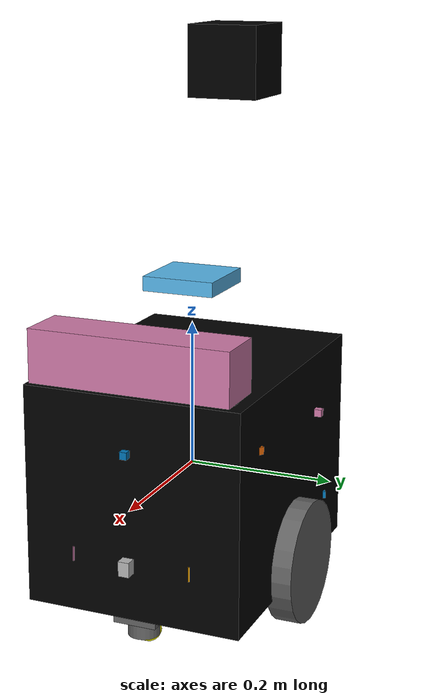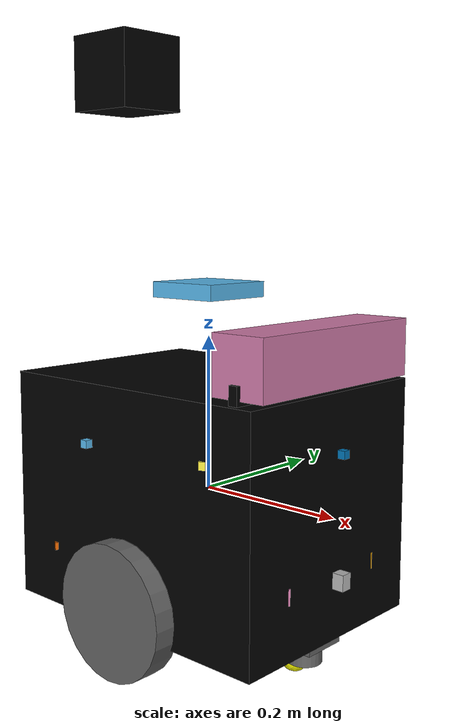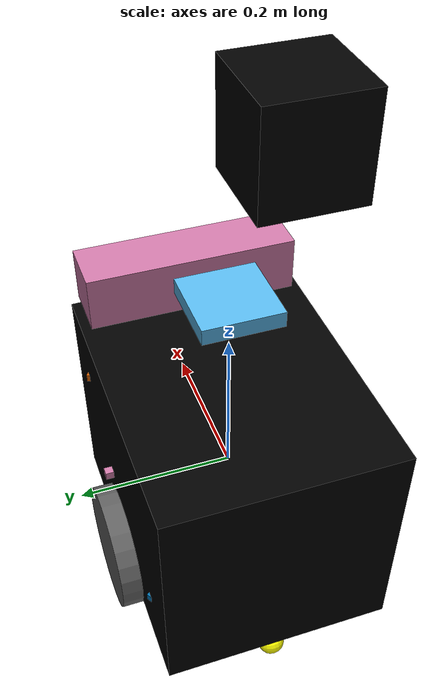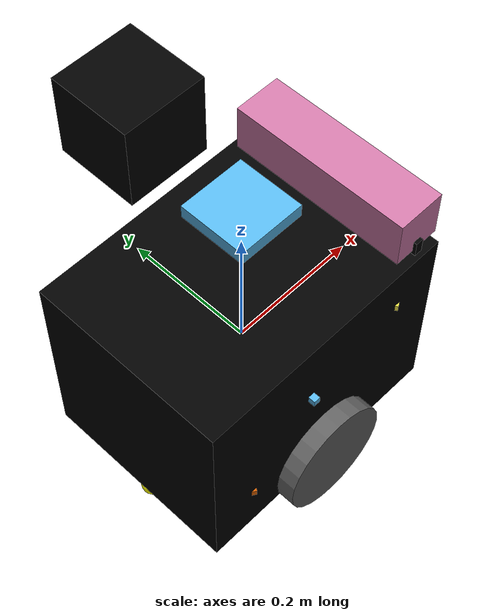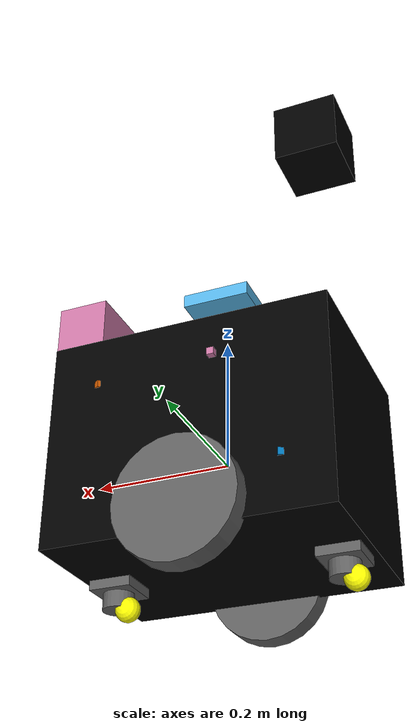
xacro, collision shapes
<?xml version="1.0"?>
<!--
  The complete evarobot library of xacros for easy reference
 -->
<robot name="evarobot" xmlns:xacro="http://ros.org/wiki/xacro">

  <xacro:property name="pi" value="3.1415926535897931" />

  <!-- Includes -->
  <xacro:include filename="$(find evarobot_description)/urdf/materials.urdf.xacro"/>
  <xacro:include filename="$(find evarobot_description)/urdf/evarobot_base.urdf.xacro"/>
  <xacro:include filename="$(find evarobot_description)/urdf/evarobot_caster.urdf.xacro"/>
  <xacro:include filename="$(find evarobot_description)/urdf/evarobot_wheel.urdf.xacro"/>
  <xacro:include filename="$(find evarobot_description)/urdf/evarobot_ahrs.urdf.xacro"/>
  <xacro:include filename="$(find evarobot_description)/urdf/evarobot_sonar.urdf.xacro"/>
  <xacro:include filename="$(find evarobot_description)/urdf/evarobot_infrared.urdf.xacro"/>
  <xacro:include filename="$(find evarobot_description)/urdf/evarobot_kinect.urdf.xacro"/>
  <xacro:include filename="$(find evarobot_description)/urdf/evarobot_lidar.urdf.xacro"/>
  <xacro:include filename="$(find evarobot_description)/urdf/evarobot_bumper.urdf.xacro"/>
  <xacro:include filename="$(find evarobot_description)/urdf/evarobot_pozyx.urdf.xacro"/>
  <xacro:include filename="$(find evarobot_description)/urdf/plates.urdf.xacro"/>

 <!-- Differential Drive Plugin -->
 <gazebo>
    <plugin name="differential_drive_controller" filename="libgazebo_ros_diff_drive.so">
	  <alwaysOn>true</alwaysOn>
	  <updateRate>10.0</updateRate>
		<robotBaseFrame>base_link</robotBaseFrame>
		<publishWheelTF>true</publishWheelTF>
		<publishWheelJointState>true</publishWheelJointState>
		<wheelAcceleration>1</wheelAcceleration>
	  <leftJoint>right_wheel_joint</leftJoint>
	  <rightJoint>left_wheel_joint</rightJoint>
	  <wheelSeparation>0.33</wheelSeparation>
	  <wheelDiameter>0.17</wheelDiameter>
	  <wheelTorque>20</wheelTorque>
	  <commandTopic>cmd_vel</commandTopic>
	  <odometryTopic>odom</odometryTopic>
	  <odometryFrame>odom_combined</odometryFrame>
    </plugin>
  </gazebo>

	<gazebo>
		<plugin name="MultipleContact" filename="libevarobot_ros_bumper.so"/>
  </gazebo>

  <!-- Base -->
  <xacro:evarobot_base prefix="base"
					   mesh_x="0.065"
					   mesh_y="-0.11"
					   mesh_z="-0.15"
					   mesh_roll="0.0"
					   mesh_pitch="0.0"
					   mesh_yaw="0"
					   box_x="0.40"
					   box_y="0.30"
					   box_z="0.30" />

  <!-- Left Wheel -->
  <xacro:evarobot_wheel prefix="left_wheel"
						joint_x="0.0"
						joint_y="0.16"
						joint_z="${-0.15 + (85-54)/1000}"
						joint_roll="0.0"
						joint_pitch="0.0"
						joint_yaw="0.0"
						cylinder_length="0.035"
						cylinder_radius="0.085"
						parent_link="base_link" />

  <!-- Right Wheel 	 -->
  <xacro:evarobot_wheel prefix="right_wheel"
						joint_x="0.0"
						joint_y="-0.16"
						joint_z="${-0.15 + (85-54)/1000}"
						joint_roll="0.0"
						joint_pitch="0.0"
						joint_yaw="0.0"
						cylinder_length="0.035"
						cylinder_radius="0.085"
						parent_link="base_link" />

  <!-- Caster -->

  <xacro:evarobot_caster prefix="front_caster"
						 radius="0.025"
						 x="0.1604"
						 y="0.0"
						 z="${-0.15 -13.5/2000}"
						 roll="0.0"
						 pitch="0.0"
						 yaw="0.0"
						 axis_x="0.577350269"
						 axis_y="0.577350269"
						 axis_z="0.577350269"
						 parent_link="base_link" />

    <xacro:evarobot_caster prefix="rear_caster"
						 radius="0.025"
						 x="-0.1604"
						 y="0.0"
						 z="${-0.15 -13.5/2000}"
						 roll="0.0"
						 pitch="0.0"
						 yaw="0.0"
						 axis_x="0.577350269"
						 axis_y="0.577350269"
						 axis_z="0.577350269"
						 parent_link="base_link" />

  <!-- Lidar -->
  <xacro:evarobot_lidar prefix="lidar"
                        joint_x="-0.15"
                        joint_y="0.0"
                        joint_z="${0.4415 + 100/1000}"
                        joint_roll="0.0"
                        joint_pitch="0.0"
                        joint_yaw="3.14"
												update_rate="40"
												samples="720"
												resolution="1"
												min_angle="-3.1416"
												max_angle="3.1416"
												min_range="0.5"
												max_range="5.0"
												range_resolution="0.1"
												parent_link="base_link"
												robot_namespace="sensor"
												topic_name="lidar"
												frame_name="lidar_link" />

  <!-- Kinect -->
   <xacro:evarobot_kinect prefix="kinect"
						 joint_x="0.17"
						 joint_y="0.0"
						 joint_z="${0.21 - 18.7/1000}"
						 joint_roll="0.0"
						 joint_pitch="0.0"
						 joint_yaw="0.0"
						 parent_link="base_link"
						 base_line="0.2"
						 update_rate="1.0"
						 camera_name="camera" />

  <!-- AHRS/IMU -->
  <xacro:evarobot_ahrs prefix="imu"
					   joint_x="0.0"
					   joint_y="0.0"
					   joint_z="0.19"
					   joint_roll="${pi}"
					   joint_pitch="0.0"
					   joint_yaw="0.0"
					   parent_link="base_link"
					   topic_name="imu"
					   frame_name="imu_link"
					   update_rate="10.0"
					   service_name="imu_service"
					   robot_namespace="evarobot" />

 <!-- Sonar -->

	<xacro:evarobot_sonar prefix="sonar0"
				parent_link="base_link"
				scan_samples="320"
				scan_resolution="1"
				min_angle="-0.479965544"
				max_angle="0.479965544"
				range_resolution="0.01"
				min_range="0.02"
				max_range="5.0"
				topic_name="sonar0"
				frame_name="sonar0_link"
				update_rate="4" >
				<origin xyz="0.130 -0.147 ${0.03+50/1000}" rpy="0 0 ${-pi/3}" />

	</xacro:evarobot_sonar>

  <xacro:evarobot_sonar prefix="sonar1"
						parent_link="base_link"
						scan_samples="320"
						scan_resolution="1"
						min_angle="-0.479965544"
						max_angle="0.479965544"
						range_resolution="0.01"
						min_range="0.02"
						max_range="5.0"
						topic_name="sonar1"
						frame_name="sonar1_link"
						update_rate="4">
								<origin xyz="0.213 0.0 ${0.03+50/1000}" rpy="0 0 0" />
	</xacro:evarobot_sonar>

	<xacro:evarobot_sonar prefix="sonar2"
				parent_link="base_link"
				scan_samples="320"
				scan_resolution="1"
				min_angle="-0.479965544"
				max_angle="0.479965544"
				range_resolution="0.01"
				min_range="0.02"
				max_range="5.0"
				topic_name="sonar2"
				frame_name="sonar2_link"
				update_rate="4" >
				<origin xyz="0.130 0.147 ${0.03+50/1000}" rpy="0 0 ${pi/3}" />
	</xacro:evarobot_sonar>

	<xacro:evarobot_sonar prefix="sonar3"
					parent_link="base_link"
					scan_samples="320"
					scan_resolution="1"
					min_angle="-0.479965544"
					max_angle="0.479965544"
					range_resolution="0.01"
					min_range="0.02"
					max_range="5.0"
					topic_name="sonar3"
					frame_name="sonar3_link"
					update_rate="4">
						<origin xyz="-0.045 0.168 ${0.03+50/1000}" rpy="0 0 ${pi/2}" />

	</xacro:evarobot_sonar>

	<xacro:evarobot_sonar prefix="sonar4"
					parent_link="base_link"
					scan_samples="320"
					scan_resolution="1"
					min_angle="-0.479965544"
					max_angle="0.479965544"
					range_resolution="0.01"
					min_range="0.02"
					max_range="5.0"
					topic_name="sonar4"
					frame_name="sonar4_link"
					update_rate="4" >
					<origin xyz="-0.191 0.084 ${0.03+50/1000}" rpy="0 0 ${5*pi/6}" />

	</xacro:evarobot_sonar>

	<xacro:evarobot_sonar prefix="sonar5"
					parent_link="base_link"
					scan_samples="320"
					scan_resolution="1"
					min_angle="-0.479965544"
					max_angle="0.479965544"
					range_resolution="0.01"
					min_range="0.02"
					max_range="5.0"
					topic_name="sonar5"
					frame_name="sonar5_link"
					update_rate="4" >
					<origin xyz="-0.191 -0.084 ${0.03+50/1000}" rpy="0 0 ${-5*pi/6}" />
	</xacro:evarobot_sonar>

  <xacro:evarobot_sonar prefix="sonar6"
						parent_link="base_link"
						scan_samples="320"
						scan_resolution="1"
						min_angle="-0.479965544"
						max_angle="0.479965544"
						range_resolution="0.01"
						min_range="0.02"
						max_range="5.0"
						topic_name="sonar6"
						frame_name="sonar6_link"
						update_rate="4">
						  <origin xyz="-0.045 -0.168 ${0.03+50/1000}" rpy="0 0 ${-pi/2}" />
  </xacro:evarobot_sonar>

  <!-- Infrared -->

  <xacro:evarobot_infrared prefix="ir0"
						   parent_link="base_link"
						   scan_samples="320"
						   scan_resolution="1"
						   min_angle="-0.001"
						   max_angle="0.001"
						   range_resolution="0.01"
						   min_range="0.10"
						   max_range="0.80"
						   topic_name="ir0"
						   frame_name="ir0_link"
						   update_rate="4" >
						   	     <origin xyz="0.191 -0.084 ${-0.122+50/1000}" rpy="0 0 ${-pi/6}" />

	</xacro:evarobot_infrared>

  <xacro:evarobot_infrared prefix="ir1"
						   parent_link="base_link"
						   scan_samples="320"
						   scan_resolution="1"
						   min_angle="-0.001"
						   max_angle="0.001"
						   range_resolution="0.01"
						   min_range="0.10"
						   max_range="0.80"
						   topic_name="ir1"
						   frame_name="ir1_link"
						   update_rate="4">
						   		<origin xyz="0.191 0.084 ${-0.122+50/1000}" rpy="0 0 ${pi/6}" />

	</xacro:evarobot_infrared>

  <xacro:evarobot_infrared prefix="ir2"
						   parent_link="base_link"
						   scan_samples="320"
						   scan_resolution="1"
						   min_angle="-0.001"
						   max_angle="0.001"
						   range_resolution="0.01"
						   min_range="0.10"
						   max_range="0.80"
						   topic_name="ir2"
						   frame_name="ir2_link"
						   update_rate="4">
						   		<origin xyz="-0.130 0.147 ${-0.122+50/1000}" rpy="0 0 ${2*pi/3}" />

	</xacro:evarobot_infrared>

  <xacro:evarobot_infrared prefix="ir3"
						   parent_link="base_link"
						   scan_samples="320"
						   scan_resolution="1"
						   min_angle="-0.001"
						   max_angle="0.001"
						   range_resolution="0.01"
						   min_range="0.10"
						   max_range="0.80"
						   topic_name="ir3"
						   frame_name="ir3_link"
						   update_rate="4">
						   	    <origin xyz="-0.130 -0.147 ${-0.122+50/1000}" rpy="0 0 ${-2*pi/3}" />

	</xacro:evarobot_infrared>

 <!-- Bumper -->

  <xacro:evarobot_bumper prefix="bumper0"
						 box_x="0.015"
						 box_y="0.015"
						 box_z="0.020"
						 update_rate="10.0"
						 parent_link="base_link"
						 topic_name="bumper0"
						 frame_name="bumper0_link" >
  <origin xyz="0.191 -0.084 ${-0.122+50/1000}" rpy="0 0 ${-pi/6}" />
						 </xacro:evarobot_bumper>

  <xacro:evarobot_bumper prefix="bumper1"
						 box_x="0.015"
						 box_y="0.015"
						 box_z="0.020"
						 update_rate="10.0"
						 parent_link="base_link"
						 topic_name="bumper1"
						 frame_name="bumper1_link" >
						   <origin xyz="0.213 0.0 ${-0.122+50/1000}" rpy="0 0 0" />
						</xacro:evarobot_bumper>

  <xacro:evarobot_bumper prefix="bumper2"
						 box_x="0.015"
						 box_y="0.015"
						 box_z="0.020"
						 update_rate="10.0"
						 parent_link="base_link"
						 topic_name="bumper2"
						 frame_name="bumper2_link" >
  <origin xyz="0.191 0.084 ${-0.122+50/1000}" rpy="0 0 ${pi/6}" />
						 </xacro:evarobot_bumper>

  <!-- Pozyx -->
  <xacro:evarobot_pozyx prefix="pozyx"
						 joint_x="0.0"
						 joint_y="0.0"
						 joint_z="0.26"
						 parent_link="base_link"
						 topic_name="pozyx"
						 joint_roll="0.0"
						 joint_pitch="0.0"
						 joint_yaw="0.0" >
						 </xacro:evarobot_pozyx>

</robot>

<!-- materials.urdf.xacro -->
<robot xmlns:xacro="http://www.ros.org/wiki/xacro">
	<!-- Materials -->
  <material name="Black">
    <color rgba="0 0 0 1.0"/>
  </material>
  <material name="Grey">
    <color rgba="${96/255} ${96/255} ${96/255} 1.0"/>
  </material>
  <material name="Orange">
    <color rgba="${255/255} ${108/255} ${10/255} 1.0"/>
  </material>
  <material name="Yellow">
    <color rgba="${255/255} ${255/255} ${0/255} 1.0"/>
  </material>

</robot>

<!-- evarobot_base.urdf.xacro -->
<robot xmlns:xacro="http://www.ros.org/wiki/xacro" name="eva_base">

	<xacro:macro name="evarobot_base" params="prefix mesh_x mesh_y mesh_z mesh_roll mesh_pitch mesh_yaw box_x box_y box_z">
		<link name="${prefix}_link">

			<collision>
				<origin xyz="0 0 0" rpy="0 0 0"/>
				<geometry>
					<box size="${box_x} ${box_y} ${box_z}"/>
				</geometry>
			</collision>

			<visual>
				<origin xyz="${mesh_x} ${mesh_y} ${mesh_z}" rpy="${mesh_roll} ${mesh_pitch} ${mesh_yaw}" />
				<geometry>
					<mesh filename="package://evarobot_description/meshes/base.stl" scale="1 1 1"/>

				</geometry>
				<material name="Black" />
			</visual>

			<inertial>
				<origin xyz="0 0 0" rpy="0 0 0"/>
				<mass value="10.0"/>
				<inertia
					ixx="1.0" ixy="0" ixz="0"
					iyy="1.0" iyz="0"
					izz="1.0"/>
			</inertial>
		</link>

		<gazebo reference="${prefix}_link">
      <material>Gazebo/Black</material>
		</gazebo>

	</xacro:macro>
</robot>

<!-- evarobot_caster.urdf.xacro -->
<robot xmlns:xacro="http://www.ros.org/wiki/xacro">
	<xacro:macro name="evarobot_caster" params="prefix radius x y z roll pitch yaw axis_x axis_y axis_z parent_link">

    <link name="${prefix}_base_link">
			<collision>
				<origin rpy="0 0 0" xyz="0 0 0"/>
				<geometry>
					<box size="${60/1000} ${60/1000} ${13.5/1000}"/>
				</geometry>
			</collision>

			<visual>
				<origin rpy="${pi} 0 0" xyz="${-5/1000} ${-21.5/2000} ${13.5/2000}"/>
				<geometry>
					<mesh filename="package://evarobot_description/meshes/caster_base.stl" scale="1 1 1"/>
				</geometry>
				<material name="Grey"/>
			</visual>

			<inertial>
				<mass value="0.01" />
				<origin xyz="0 0 0" />
				<inertia ixx="1e-6" ixy="0.0" ixz="0.0"
								 iyy="1e-6" iyz="0.0"
								 izz="1e-6" />
			</inertial>

		</link>

		<gazebo reference="${prefix}_base_link">
			<material>Gazebo/Grey</material>
	    <mu1>0.0</mu1>
	    <mu2>0.0</mu2>
	    <kp>1000000.0</kp>
	    <kd>100.0</kd>
	    <minDepth>0.001</minDepth>
	    <maxVel>1.0</maxVel>
		</gazebo>

		<joint name="${prefix}_base_joint" type="fixed">
			<parent link="${parent_link}"/>
			<child link="${prefix}_base_link"/>
			<origin rpy="${roll} ${pitch} ${yaw}" xyz="${x} ${y} ${z}"/>
			<axis xyz="0 0 0"/>
		</joint>

    <link name="${prefix}_rotate_link">
			<collision>
				<origin rpy="0 0 0" xyz="0 0 0"/>
				<geometry>
					<cylinder length="${23/1000}" radius="${21.5/1000}"/>
				</geometry>
			</collision>

			<visual>
				<origin rpy="${pi} 0 ${pi/2}" xyz="0 0 ${10/1000}"/>
				<geometry>
					<mesh filename="package://evarobot_description/meshes/caster_rot.stl" scale="1 1 1"/>
				</geometry>
				<material name="Grey"/>
			</visual>

			<inertial>
				<mass value="0.01" />
				<origin xyz="0 0 0" />
				<inertia ixx="1e-6" ixy="0.0" ixz="0.0"
								 iyy="1e-6" iyz="0.0"
								 izz="1e-6" />
			</inertial>

		</link>

		<gazebo reference="${prefix}_rotate_link">
			<material>Gazebo/Grey</material>
	    <mu1>0.0</mu1>
	    <mu2>0.0</mu2>
	    <kp>1000000.0</kp>
	    <kd>100.0</kd>
	    <minDepth>0.001</minDepth>
	    <maxVel>1.0</maxVel>
		</gazebo>

		<joint name="${prefix}_base_rotate_joint" type="continuous">
			<parent link="${prefix}_base_link"/>
			<child link="${prefix}_rotate_link"/>
			<origin rpy="0 0 0" xyz="0.0 0.0 ${-37/2000}"/>
			<axis xyz="0 0 1"/>
		</joint>

    <link name="${prefix}_wheel_link">
			<collision>
				<origin rpy="${pi/2} 0 0" xyz="0 0 0"/>
				<geometry>
					<sphere radius="${35/2000}"/>
				</geometry>
			</collision>

			<visual>
				<origin rpy="${pi/2} 0 0" xyz="0 0 0"/>
				<geometry>
					<sphere radius="${35/2000}"/>
				</geometry>
				<material name="Yellow"/>
			</visual>

			<inertial>
				<mass value="0.01" />
				<origin xyz="0 0 0" />
				<inertia ixx="1e-6" ixy="0.0" ixz="0.0"
								 iyy="1e-6" iyz="0.0"
								 izz="1e-6" />
			</inertial>

		</link>

		<gazebo reference="${prefix}_wheel_link">
			<material>Gazebo/Yellow</material>
			<mu1>0.0</mu1>
	    <mu2>0.0</mu2>
	    <kp>1000000.0</kp>
	    <kd>100.0</kd>
	    <minDepth>0.001</minDepth>
	    <maxVel>1.0</maxVel>
		</gazebo>

		<joint name="${prefix}_rotate_wheel_joint" type="continuous">
			<parent link="${prefix}_rotate_link"/>
			<child link="${prefix}_wheel_link"/>
			<origin rpy="0 0 0" xyz="${-14.632/1000} 0.0 ${-23/2000}"/>
			<axis xyz="0.577350269 0.577350269 0.577350269"/>
		</joint>

	</xacro:macro>
</robot>

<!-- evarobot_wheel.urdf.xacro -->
<robot name="evarobot" xmlns:xacro="http://www.ros.org/wiki/xacro">
	<xacro:macro name="evarobot_wheel" params="prefix joint_x joint_y joint_z joint_roll joint_pitch joint_yaw cylinder_length cylinder_radius parent_link">

		<link name="${prefix}_link">
			<collision>
				<origin rpy="1.57075 0 0" xyz="0 0 0"/>
				<geometry>
					<cylinder length="${cylinder_length}" radius="${cylinder_radius}"/>
				</geometry>
			</collision>

			<visual>
				<origin rpy="0 0 ${pi/2}" xyz="0 0 0"/>
				<geometry>
					 <mesh filename="package://evarobot_description/meshes/rim.stl" scale="1 1 1"/>
				</geometry>
				<material name="Grey"/>
			</visual>

			<inertial>
				<origin rpy="1.57075 0 0" xyz="0 0 0"/>
				<mass value="0.85"/>
				<inertia
					ixx="0.001" ixy="0" ixz="0"
					iyy="0.001" iyz="0"
					izz="0.001"/>
			</inertial>

		</link>

		<gazebo reference="${prefix}_link">
			<material>Gazebo/Grey</material>
	    <mu1>1.0</mu1>
	    <mu2>1.0</mu2>
	    <kp>1000000.0</kp>
	    <kd>100.0</kd>
	    <minDepth>0.001</minDepth>
	    <maxVel>1.0</maxVel>
		</gazebo>

		<joint name="${prefix}_joint" type="continuous">
			<axis xyz="0 1 0"/>
			<parent link="${parent_link}"/>
			<child link="${prefix}_link"/>
			<origin rpy="${joint_roll} ${joint_pitch} ${joint_yaw}" xyz="${joint_x} ${joint_y} ${joint_z}"/>
		</joint>

		<link name="${prefix}tire_link">
			<collision>
				<origin rpy="1.57075 0 0" xyz="0 0 0"/>
				<geometry>
					<cylinder length="0.001" radius="0.001"/>
				</geometry>
			</collision>

			<visual>
				<origin rpy="0 0 ${pi/2}" xyz="0 0 0"/>
				<geometry>
					<mesh filename="package://evarobot_description/meshes/tire.stl" scale="1 1 1"/>
				</geometry>
				<material name="Black"/>
			</visual>

			<inertial>
				<origin xyz="0 0 0" rpy="0 0 0"/>
				<mass value="0.001"/>
				<inertia
					ixx="0.001" ixy="0" ixz="0"
					iyy="0.001" iyz="0"
					izz="0.001"/>
			</inertial>

		</link>

		<gazebo reference="${prefix}tire_link">
			<material>Gazebo/Black</material>
		</gazebo>

		<joint name="${prefix}tire_joint" type="continuous">
			<axis xyz="0 1 0"/>
			<parent link="${prefix}_link"/>
			<child link="${prefix}tire_link"/>
			<origin rpy="0 0 0" xyz="0.0 0.0 0.0"/>
		</joint>

	</xacro:macro>
</robot>

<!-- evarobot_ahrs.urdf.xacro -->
<robot xmlns:xacro="http://www.ros.org/wiki/xacro">
	<xacro:macro name="evarobot_ahrs" params="prefix joint_x joint_y joint_z joint_roll joint_pitch joint_yaw parent_link topic_name frame_name update_rate service_name robot_namespace">

		<link name="${prefix}_link">
			<inertial>
				<mass value="0.001"/>
				<origin rpy="0 0 0" xyz="0 0 0"/>
				<inertia ixx="0.0001" ixy="0" ixz="0" iyy="0.0001" iyz="0" izz="0.0001"/>
			</inertial>

			<visual>
				<origin rpy="0 0 0" xyz="0 0 0"/>
				<geometry>
					<box size="0.001 0.001 0.001"/>
				</geometry>
			</visual>

			<collision>
				<origin rpy="0 0 0" xyz="0 0 0"/>
				<geometry>
					<box size=".001 .001 .001"/>
				</geometry>
			</collision>
		</link>

		<joint name="${prefix}_joint" type="fixed">
			<axis xyz="1 0 0"/>
			<origin xyz="${joint_x} ${joint_y} ${joint_z}" rpy="${joint_roll} ${joint_pitch} ${joint_yaw}" />
			<parent link="${parent_link}"/>
			<child link="${prefix}_link"/>
		</joint>

		<gazebo>
			<plugin name="${prefix}_plugin" filename="libgazebo_ros_imu.so">
				<alwaysOn>true</alwaysOn>
				<frameName>${frame_name}</frameName>
				<bodyName>${prefix}_link</bodyName>
				<topicName>${topic_name}</topicName>
				<serviceName>${service_name}</serviceName>
				<gaussianNoise>0.0</gaussianNoise>
				<updateRate>${update_rate}</updateRate>
			</plugin>
		</gazebo>

	</xacro:macro>

</robot>

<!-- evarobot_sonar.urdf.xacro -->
<robot xmlns:xacro="http://www.ros.org/wiki/xacro">

	<xacro:macro name="evarobot_sonar"
	params="prefix
			parent_link
			scan_samples scan_resolution min_angle max_angle
			range_resolution min_range max_range
			topic_name frame_name
			update_rate
			*plate_name">

		<link name="${prefix}_link">
			<inertial>
				<mass value="0.001" />
				<origin xyz="0 0 0" rpy="0 0 0" />
				<inertia ixx="1e-6" ixy="0" ixz="0" iyy="1e-6" iyz="0" izz="1e-6" />
			</inertial>

			<collision>
				<origin xyz="0 0 0" rpy="0 0 0" />
				<geometry>
					<box size="0.01 0.01 0.01" />
				</geometry>
			</collision>
		</link>

		<joint name="${prefix}_joint" type="fixed">
			<axis xyz="1 0 0" />
			<xacro:insert_block name="plate_name" />
			<parent link="${parent_link}"/>
			<child link="${prefix}_link"/>
		</joint>

		<!-- Sonar Plugin -->
		<gazebo reference="${prefix}_link">
			<sensor type="ray" name="${prefix}">
				<pose>0 0 0 0 0 0</pose>
				<ray>
					<scan>
						<horizontal>
							<samples>${scan_samples}</samples>
							<resolution>${scan_resolution}</resolution>
							<min_angle>${min_angle}</min_angle>
							<max_angle>${max_angle}</max_angle>
						</horizontal>
					</scan>

					<range>
						<min>${min_range}</min>
						<max>${max_range}</max>
						<resolution>${range_resolution}</resolution>
					</range>
				</ray>

				<plugin name="${prefix}_plugin" filename="libim_gazebo_ros_sonar.so">
					<topicName>${topic_name}</topicName>
					<frameName>${frame_name}</frameName>
					<frameId>${frame_name}</frameId>
					<radiation>ultrasound</radiation>
					<fov>0.7</fov>
					<gaussianNoise>0</gaussianNoise>
				</plugin>

				<always_on>1</always_on>
				<update_rate>${update_rate}</update_rate>
				<visualize>false</visualize>
			</sensor>
		</gazebo>

	</xacro:macro>
</robot>

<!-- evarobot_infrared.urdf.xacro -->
<robot xmlns:xacro="http://www.ros.org/wiki/xacro">
	<xacro:macro name="evarobot_infrared"
		params="prefix
				parent_link
				scan_samples scan_resolution min_angle max_angle
				range_resolution min_range max_range
				topic_name frame_name
				update_rate
				*plate_name">
		<joint name="${prefix}_joint" type="fixed">
				<axis xyz="1 0 0"/>
				<xacro:insert_block name="plate_name" />
				<parent link="${parent_link}"/>
				<child link="${prefix}_link"/>
		</joint>

		<link name="${prefix}_link">
			<inertial>
				<mass value="0.001" />
				<origin xyz="0 0 0" rpy="0 0 0" />
				<inertia ixx="1e-6" ixy="0" ixz="0" iyy="1e-6" iyz="0" izz="1e-6" />
			</inertial>
			<collision>
				<origin xyz="0 0 0" rpy="0 0 0" />
				<geometry>
					<box size="0.01 0.01 0.01" />
				</geometry>
			</collision>
		</link>

		<gazebo reference="${prefix}_link">
			<sensor type="ray" name="ir0">
				<pose>0 0 0 0 0 0</pose>
				<ray>
					<scan>
						<horizontal>
							<samples>${scan_samples}</samples>
							<resolution>${scan_resolution}</resolution>
							<min_angle>${min_angle}</min_angle>
							<max_angle>${max_angle}</max_angle>
						</horizontal>
					</scan>

					<range>
						<min>${min_range}</min>
						<max>${max_range}</max>
						<resolution>${range_resolution}</resolution>
					</range>
				</ray>

				<plugin name="${prefix}_plugin" filename="libim_gazebo_ros_sonar.so">
					<topicName>${topic_name}</topicName>
					<frameName>${frame_name}</frameName>
					<frameId>${frame_name}</frameId>
					<radiation>infrared</radiation>
					<fov>0.01</fov>
					<gaussianNoise>0</gaussianNoise>
				</plugin>

				<always_on>1</always_on>
				<update_rate>${update_rate}</update_rate>
				<visualize>false</visualize>
			</sensor>
		</gazebo>

	</xacro:macro>
</robot>

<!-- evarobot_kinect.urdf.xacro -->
<robot xmlns:xacro="http://www.ros.org/wiki/xacro">

	<xacro:macro name="evarobot_kinect"
	params="prefix
			joint_x joint_y joint_z joint_roll joint_pitch joint_yaw
			parent_link
			base_line update_rate
			camera_name">

    <joint name="camera_rgb_joint" type="fixed">
			<origin xyz="0.0 -0.02 0.0" rpy="0.0 0.0 0.0"/>
			<parent link="camera_link"/>
      <child link="camera_rgb_frame" />
    </joint>
    <link name="camera_rgb_frame"/>

    <joint name="camera_rgb_optical_joint" type="fixed">
      <origin xyz="0 0 0" rpy="${-pi/2} 0 ${-pi/2}" />
      <parent link="camera_rgb_frame" />
      <child link="camera_rgb_optical_frame" />
    </joint>
    <link name="camera_rgb_optical_frame"/>

    <joint name="camera_joint" type="fixed">
			<origin xyz="${joint_x} ${joint_y} ${joint_z}" rpy="${joint_roll} ${joint_pitch} ${joint_yaw}"/>
      <parent link="${parent_link}"/>
      <child link="camera_link"/>
    </joint>

    <link name="camera_link">
      <visual>
        <origin xyz="0.0 0.0 0.004" rpy="0 0 0"/>
        <geometry>
          <mesh filename="package://evarobot_description/meshes/xtion_pro_camera.dae"/>
        </geometry>
      </visual>
      <collision>
        <origin xyz="0.0 0.0 0.0" rpy="0 0 0" />
        <geometry>
        <box size="0.0730 0.2760 0.0720"/>
      </geometry>
      </collision>
      <inertial>
        <mass value="0.170" />
        <origin xyz="0 0 0" />
        <inertia ixx="0.001152600" ixy="0.0" ixz="0.0"
                 iyy="0.000148934" iyz="0.0"
                 izz="0.001154654" />
      </inertial>
    </link>

    <joint name="camera_depth_joint" type="fixed">
      <origin xyz="0 -0.045 0" rpy="0 0 0" />
      <parent link="camera_link" />
      <child link="camera_depth_frame" />
    </joint>
    <link name="camera_depth_frame"/>

    <joint name="camera_depth_optical_joint" type="fixed">
      <origin xyz="0 0 0" rpy="${-pi/2} 0 ${-pi/2}" />
      <parent link="camera_depth_frame" />
      <child link="camera_depth_optical_frame" />
    </joint>
    <link name="camera_depth_optical_frame"/>

    <!-- Asus mount -->
    <joint name="mount_asus_xtion_pro_joint" type="fixed">
			<origin xyz="${0.17 -16.5/1000 + 0.015} -0.0050 ${0.21 - 18.7/1000 -35/1000}" rpy="${pi/2} 0 ${-pi/2}"/>
      <parent link="base_link"/>
      <child link="mount_asus_xtion_pro_link"/>
    </joint>
    <link name="mount_asus_xtion_pro_link">
      <visual>
        <origin xyz="0 0 0" rpy="0 0 0"/>
        <geometry>
          <mesh filename="package://evarobot_description/meshes/asus_base.stl"/>
        </geometry>
        <material name="Black"/>
      </visual>
      <collision>
        <origin xyz="0.0 0.0 0.0" rpy="0 0 0" />
        <geometry>
        <box size="0.2760 0.0330 0.0120"/>
      </geometry>
      </collision>
      <inertial>
        <mass value="0.170" />
        <origin xyz="0 0 0" />
        <inertia ixx="0.001152600" ixy="0.0" ixz="0.0"
                 iyy="0.000148934" iyz="0.0"
                 izz="0.001154654" />
      </inertial>
    </link>

		<gazebo reference="mount_asus_xtion_pro_link">
			<material>Gazebo/Black</material>
		</gazebo>

		<gazebo reference="camera_link">
      <sensor type="depth" name="camera">
        <always_on>true</always_on>
        <update_rate>20.0</update_rate>
        <camera>
          <horizontal_fov>${60.0*pi/180.0}</horizontal_fov>
          <image>
            <format>R8G8B8</format>
            <width>640</width>
            <height>480</height>
          </image>
          <clip>
            <near>0.05</near>
            <far>8.0</far>
          </clip>
        </camera>
        <plugin name="kinect_camera_controller" filename="libgazebo_ros_openni_kinect.so">
          <cameraName>camera</cameraName>
          <alwaysOn>true</alwaysOn>
          <updateRate>10</updateRate>
          <imageTopicName>rgb/image_raw</imageTopicName>
          <depthImageTopicName>depth/image_raw</depthImageTopicName>
          <pointCloudTopicName>depth/points</pointCloudTopicName>
          <cameraInfoTopicName>rgb/camera_info</cameraInfoTopicName>
          <depthImageCameraInfoTopicName>depth/camera_info</depthImageCameraInfoTopicName>
          <frameName>camera_depth_optical_frame</frameName>
          <baseline>0.1</baseline>
					<pointCloudCutoff>0.4</pointCloudCutoff>
					<distortionK1>0.00000001</distortionK1>
					<distortionK2>0.00000001</distortionK2>
					<distortionK3>0.00000001</distortionK3>
					<distortionT1>0.00000001</distortionT1>
					<distortionT2>0.00000001</distortionT2>
					<CxPrime>0</CxPrime>
					<Cx>0</Cx>
					<Cy>0</Cy>
					<focalLength>0</focalLength>
					<hackBaseline>0</hackBaseline>
        </plugin>
      </sensor>
    </gazebo>

	</xacro:macro>
</robot>

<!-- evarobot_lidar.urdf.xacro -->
<robot xmlns:xacro="http://www.ros.org/wiki/xacro">
	<xacro:macro name="evarobot_lidar"
	params="prefix joint_x joint_y joint_z joint_roll joint_pitch joint_yaw
				   update_rate samples resolution min_angle max_angle
				   min_range max_range range_resolution
				   parent_link
				   robot_namespace topic_name frame_name">

		<link name="${prefix}_link">
			<collision>
				<origin xyz="0 0 0" rpy="0 0 0"/>
				<geometry>
					<box size="0.1 0.1 0.1"/>
				</geometry>
			</collision>

			<visual>
				<origin xyz="${-55/1000} ${-110/1000} ${-50/1000}" rpy="${-pi/2} ${pi} 0"/>
				<geometry>
					<mesh filename="package://evarobot_description/meshes/rplidar.stl" scale="0.001 0.001 0.001" />
				</geometry>
				<material name="Black" />
			</visual>

			<inertial>
				<mass value="1e-5" />
				<origin xyz="0 0 0" rpy="0 0 0"/>
				<inertia ixx="1e-6" ixy="0" ixz="0" iyy="1e-6" iyz="0" izz="1e-6" />
			</inertial>
		</link>

		<joint name="${prefix}_joint" type="fixed">
			<axis xyz="0 1 0" />
			<origin xyz="${joint_x} ${joint_y} ${joint_z}" rpy="${joint_roll} ${joint_pitch} ${joint_yaw}"/>
			<parent link="${parent_link}"/>
			<child link="${prefix}_link"/>
		</joint>

		<gazebo reference="${prefix}_link">
			<material>Gazebo/Black</material>
			<sensor type="gpu_ray" name="head_hokuyo_sensor">
				<pose>0 0 0 0 0 0</pose>
				<visualize>false</visualize>
				<update_rate>${update_rate}</update_rate>
				<ray>
					<scan>
						<horizontal>
							<samples>${samples}</samples>
							<resolution>${resolution}</resolution>
							<min_angle>${min_angle}</min_angle>
							<max_angle>${max_angle}</max_angle>
						</horizontal>
					</scan>

					<range>
						<min>${min_range}</min>
						<max>${max_range}</max>
						<resolution>${range_resolution}</resolution>
					</range>

					<noise>
						<type>gaussian</type>
						<mean>0.0</mean>
						<stddev>0.01</stddev>
					</noise>
				</ray>

    			<plugin name="${prefix}_controller" filename="libgazebo_ros_gpu_laser.so">
					<topicName>${topic_name}</topicName>
					<frameName>${frame_name}</frameName>
				</plugin>
			</sensor>
		</gazebo>

	</xacro:macro>
</robot>

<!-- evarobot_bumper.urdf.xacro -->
<robot xmlns:xacro="http://www.ros.org/wiki/xacro">
	<xacro:macro name="evarobot_bumper"
	params="prefix
			box_x box_y box_z
			update_rate
			parent_link
			topic_name
			frame_name
			*plate_name">

		<!-- Bumper Link -->
		<link name="${prefix}_link">
			<collision>
				<origin xyz="0 0 0" rpy="0 0 0"/>
				<geometry>
				<box size="${box_x} ${box_y} ${box_z}"/>
				</geometry>
			</collision>

			<inertial>
				<mass value="1e-5" />
				<origin xyz="0 0 0" rpy="0 0 0"/>
				<inertia ixx="1e-6" ixy="0" ixz="0" iyy="1e-6" iyz="0" izz="1e-6" />
			</inertial>
		</link>

		<!-- Bumper joint -->
		<joint name="${prefix}_joint" type="fixed">
			<axis xyz="0 1 0" />
			<xacro:insert_block name="plate_name" />
			<parent link="${parent_link}"/>
			<child link="${prefix}_link"/>
		</joint>

		<!-- Bumper plugin -->
		<gazebo reference="${prefix}_link">
			<sensor name="${prefix}" type="contact">
				<always_on>true</always_on>
				<update_rate>${update_rate}</update_rate>
				<contact>
					<collision>${prefix}_link_collision</collision>
				</contact>
				<plugin name="${prefix}_plugin" filename="libim_gazebo_ros_bumper.so">
					<bumperTopicName>${topic_name}</bumperTopicName>
				<frameName>${frame_name}</frameName>
				</plugin>
			</sensor>
	</gazebo>

	</xacro:macro>
</robot>

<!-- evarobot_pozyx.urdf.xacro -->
<robot xmlns:xacro="http://ros.org/wiki/xacro">
	<xacro:macro name="evarobot_pozyx"
	params="prefix
			parent_link
			topic_name
			joint_x
			joint_y
			joint_z
			joint_roll
			joint_pitch
			joint_yaw
			">

		<!-- Pozyx Link -->
		<link name="${prefix}_link">
			<collision>
				<origin xyz="0 0 0" rpy="0 0 0"/>
				<geometry>
					<box size="0.10 0.10 0.02"/>
				</geometry>
			</collision>
			<inertial>
				<mass value="1e-5" />
				<origin xyz="0 0 0" rpy="0 0 0"/>
				<inertia ixx="1e-6" ixy="0" ixz="0" iyy="1e-6" iyz="0" izz="1e-6" />
			</inertial>
		</link>

		<!-- Pozyx joint -->
		<joint name="${prefix}_joint" type="fixed">
			<axis xyz="0 1 0" />
				<origin xyz="${joint_x} ${joint_y} ${joint_z}" rpy="${joint_roll} ${joint_pitch} ${joint_yaw}"/> -->
			<parent link="${parent_link}"/>
			<child link="${prefix}_link"/>
		</joint>
	</xacro:macro>
</robot>
